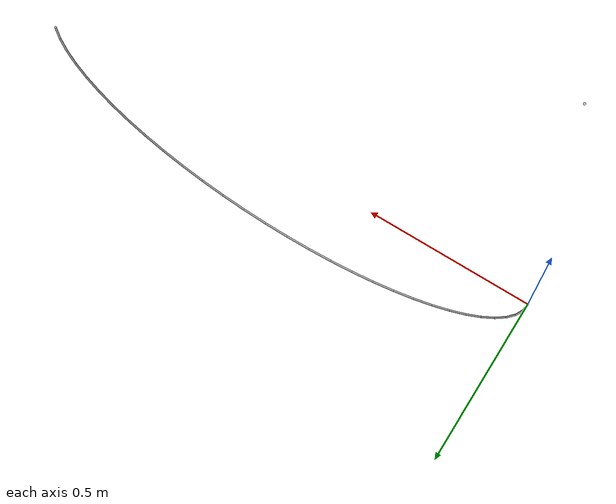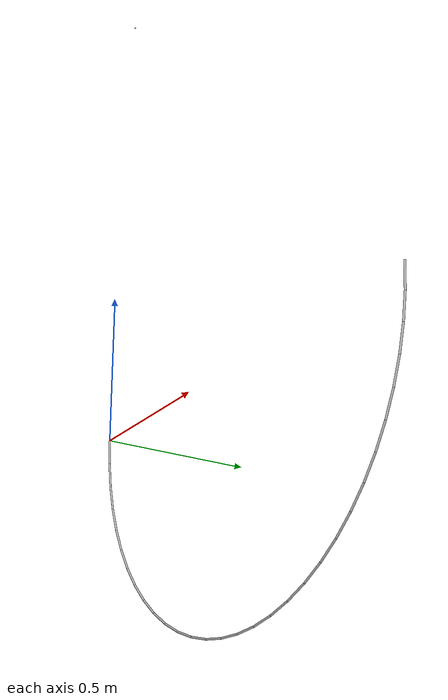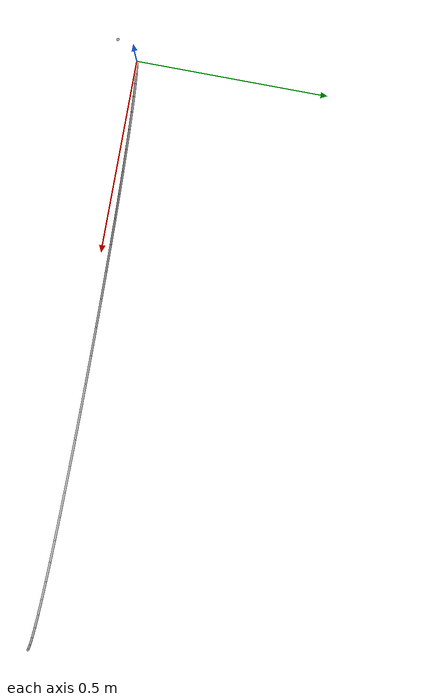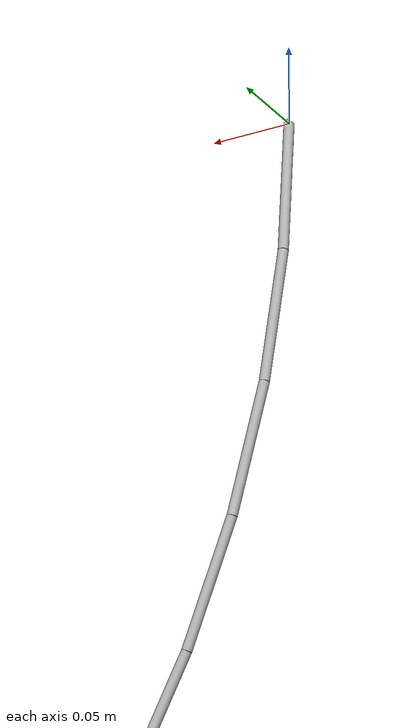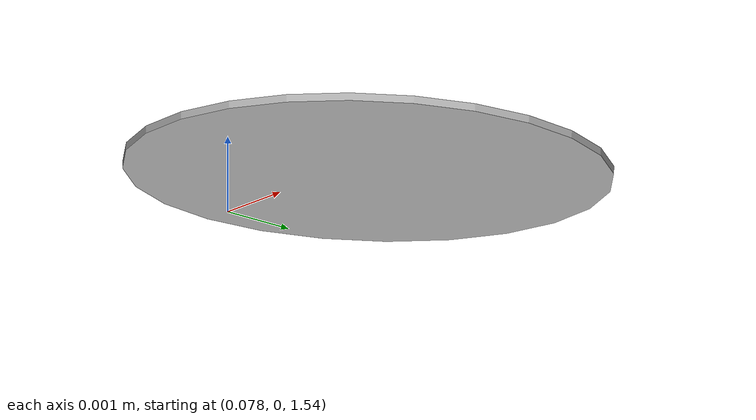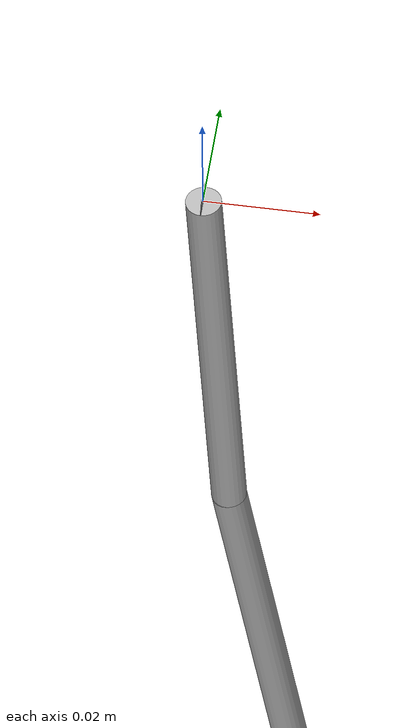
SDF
<sdf version='1.10'>
  <model name='tether_2m'>
    <link name='element_first'>
      <inertial>
        <pose>5.0000000000000002e-05 0 0 0 1.5707963267948966 0</pose>
        <mass>0.0001</mass>
        <inertia>
          <ixx>2.4033333333333338e-10</ixx>
          <ixy>0</ixy>
          <ixz>0</ixz>
          <iyy>2.4033333333333338e-10</iyy>
          <iyz>0</iyz>
          <izz>4.8050000000000005e-10</izz>
        </inertia>
      </inertial>
      <visual name='element_first_visual'>
        <pose>5.0000000000000002e-05 0 0 0 1.5707963267948966 0</pose>
        <geometry>
          <cylinder>
            <length>0.0001</length>
            <radius>0.0030999999999999999</radius>
          </cylinder>
        </geometry>
      </visual>
    </link>
    <joint name='joint_0_to_1' type='universal'>
      <pose relative_to='element_first'>0.0001 0 0 0 1.5184364492350702 0</pose>
      <parent>element_first</parent>
      <child>element_1</child>
      <axis>
        <xyz>0 1 0</xyz>
        <limit>
          <lower>-inf</lower>
          <upper>inf</upper>
        </limit>
        <dynamics>
          <damping>0.01</damping>
          <friction>0</friction>
          <spring_reference>0</spring_reference>
          <spring_stiffness>0</spring_stiffness>
        </dynamics>
    </axis>
      <axis2>
        <xyz>0 0 1</xyz>
        <limit>
          <lower>-inf</lower>
          <upper>inf</upper>
        </limit>
        <dynamics>
          <damping>0.01</damping>
          <friction>0</friction>
          <spring_reference>0</spring_reference>
          <spring_stiffness>0</spring_stiffness>
        </dynamics>
      </axis2>
    </joint>
    <link name='element_1'>
      <pose relative_to='joint_0_to_1'>0 0 0 0 0 0</pose>
      <inertial>
        <pose>0.040349999999999997 0 0 0 1.5707963267948966 0</pose>
        <mass>0.00066666666666666664</mass>
        <inertia>
          <ixx>3.6340666666666662e-07</ixx>
          <ixy>0</ixy>
          <ixz>0</ixz>
          <iyy>3.6340666666666662e-07</iyy>
          <iyz>0</iyz>
          <izz>3.2033333333333328e-09</izz>
        </inertia>
      </inertial>
      <visual name='element_1_visual'>
        <pose>0.040349999999999997 0 0 0 1.5707963267948966 0</pose>
        <geometry>
          <cylinder>
            <length>0.080699999999999994</length>
            <radius>0.0030999999999999999</radius>
          </cylinder>
        </geometry>
      </visual>
    </link>
    <joint name='joint_1_to_2' type='universal'>
      <pose relative_to='element_1'>0.080699999999999994 0 0 0 -0.10471975511965982 0</pose>
      <parent>element_1</parent>
      <child>element_2</child>
      <axis>
        <xyz>0 1 0</xyz>
        <limit>
          <lower>-inf</lower>
          <upper>inf</upper>
        </limit>
        <dynamics>
          <damping>0.01</damping>
          <friction>0</friction>
          <spring_reference>0</spring_reference>
          <spring_stiffness>0</spring_stiffness>
        </dynamics>
    </axis>
      <axis2>
        <xyz>0 0 1</xyz>
        <limit>
          <lower>-inf</lower>
          <upper>inf</upper>
        </limit>
        <dynamics>
          <damping>0.01</damping>
          <friction>0</friction>
          <spring_reference>0</spring_reference>
          <spring_stiffness>0</spring_stiffness>
        </dynamics>
      </axis2>
    </joint>
    <link name='element_2'>
      <pose relative_to='joint_1_to_2'>0 0 0 0 0 0</pose>
      <inertial>
        <pose>0.040349999999999997 0 0 0 1.5707963267948966 0</pose>
        <mass>0.00066666666666666664</mass>
        <inertia>
          <ixx>3.6340666666666662e-07</ixx>
          <ixy>0</ixy>
          <ixz>0</ixz>
          <iyy>3.6340666666666662e-07</iyy>
          <iyz>0</iyz>
          <izz>3.2033333333333328e-09</izz>
        </inertia>
      </inertial>
      <visual name='element_2_visual'>
        <pose>0.040349999999999997 0 0 0 1.5707963267948966 0</pose>
        <geometry>
          <cylinder>
            <length>0.080699999999999994</length>
            <radius>0.0030999999999999999</radius>
          </cylinder>
        </geometry>
      </visual>
    </link>
    <joint name='joint_2_to_3' type='universal'>
      <pose relative_to='element_2'>0.080699999999999994 0 0 0 -0.10471975511965982 0</pose>
      <parent>element_2</parent>
      <child>element_3</child>
      <axis>
        <xyz>0 1 0</xyz>
        <limit>
          <lower>-inf</lower>
          <upper>inf</upper>
        </limit>
        <dynamics>
          <damping>0.01</damping>
          <friction>0</friction>
          <spring_reference>0</spring_reference>
          <spring_stiffness>0</spring_stiffness>
        </dynamics>
    </axis>
      <axis2>
        <xyz>0 0 1</xyz>
        <limit>
          <lower>-inf</lower>
          <upper>inf</upper>
        </limit>
        <dynamics>
          <damping>0.01</damping>
          <friction>0</friction>
          <spring_reference>0</spring_reference>
          <spring_stiffness>0</spring_stiffness>
        </dynamics>
      </axis2>
    </joint>
    <link name='element_3'>
      <pose relative_to='joint_2_to_3'>0 0 0 0 0 0</pose>
      <inertial>
        <pose>0.040349999999999997 0 0 0 1.5707963267948966 0</pose>
        <mass>0.00066666666666666664</mass>
        <inertia>
          <ixx>3.6340666666666662e-07</ixx>
          <ixy>0</ixy>
          <ixz>0</ixz>
          <iyy>3.6340666666666662e-07</iyy>
          <iyz>0</iyz>
          <izz>3.2033333333333328e-09</izz>
        </inertia>
      </inertial>
      <visual name='element_3_visual'>
        <pose>0.040349999999999997 0 0 0 1.5707963267948966 0</pose>
        <geometry>
          <cylinder>
            <length>0.080699999999999994</length>
            <radius>0.0030999999999999999</radius>
          </cylinder>
        </geometry>
      </visual>
    </link>
    <joint name='joint_3_to_4' type='universal'>
      <pose relative_to='element_3'>0.080699999999999994 0 0 0 -0.10471975511965982 0</pose>
      <parent>element_3</parent>
      <child>element_4</child>
      <axis>
        <xyz>0 1 0</xyz>
        <limit>
          <lower>-inf</lower>
          <upper>inf</upper>
        </limit>
        <dynamics>
          <damping>0.01</damping>
          <friction>0</friction>
          <spring_reference>0</spring_reference>
          <spring_stiffness>0</spring_stiffness>
        </dynamics>
    </axis>
      <axis2>
        <xyz>0 0 1</xyz>
        <limit>
          <lower>-inf</lower>
          <upper>inf</upper>
        </limit>
        <dynamics>
          <damping>0.01</damping>
          <friction>0</friction>
          <spring_reference>0</spring_reference>
          <spring_stiffness>0</spring_stiffness>
        </dynamics>
      </axis2>
    </joint>
    <link name='element_4'>
      <pose relative_to='joint_3_to_4'>0 0 0 0 0 0</pose>
      <inertial>
        <pose>0.040349999999999997 0 0 0 1.5707963267948966 0</pose>
        <mass>0.00066666666666666664</mass>
        <inertia>
          <ixx>3.6340666666666662e-07</ixx>
          <ixy>0</ixy>
          <ixz>0</ixz>
          <iyy>3.6340666666666662e-07</iyy>
          <iyz>0</iyz>
          <izz>3.2033333333333328e-09</izz>
        </inertia>
      </inertial>
      <visual name='element_4_visual'>
        <pose>0.040349999999999997 0 0 0 1.5707963267948966 0</pose>
        <geometry>
          <cylinder>
            <length>0.080699999999999994</length>
            <radius>0.0030999999999999999</radius>
          </cylinder>
        </geometry>
      </visual>
    </link>
    <joint name='joint_4_to_5' type='universal'>
      <pose relative_to='element_4'>0.080699999999999994 0 0 0 -0.10471975511965982 0</pose>
      <parent>element_4</parent>
      <child>element_5</child>
      <axis>
        <xyz>0 1 0</xyz>
        <limit>
          <lower>-inf</lower>
          <upper>inf</upper>
        </limit>
        <dynamics>
          <damping>0.01</damping>
          <friction>0</friction>
          <spring_reference>0</spring_reference>
          <spring_stiffness>0</spring_stiffness>
        </dynamics>
    </axis>
      <axis2>
        <xyz>0 0 1</xyz>
        <limit>
          <lower>-inf</lower>
          <upper>inf</upper>
        </limit>
        <dynamics>
          <damping>0.01</damping>
          <friction>0</friction>
          <spring_reference>0</spring_reference>
          <spring_stiffness>0</spring_stiffness>
        </dynamics>
      </axis2>
    </joint>
    <link name='element_5'>
      <pose relative_to='joint_4_to_5'>0 0 0 0 0 0</pose>
      <inertial>
        <pose>0.040349999999999997 0 0 0 1.5707963267948966 0</pose>
        <mass>0.00066666666666666664</mass>
        <inertia>
          <ixx>3.6340666666666662e-07</ixx>
          <ixy>0</ixy>
          <ixz>0</ixz>
          <iyy>3.6340666666666662e-07</iyy>
          <iyz>0</iyz>
          <izz>3.2033333333333328e-09</izz>
        </inertia>
      </inertial>
      <visual name='element_5_visual'>
        <pose>0.040349999999999997 0 0 0 1.5707963267948966 0</pose>
        <geometry>
          <cylinder>
            <length>0.080699999999999994</length>
            <radius>0.0030999999999999999</radius>
          </cylinder>
        </geometry>
      </visual>
    </link>
    <joint name='joint_5_to_6' type='universal'>
      <pose relative_to='element_5'>0.080699999999999994 0 0 0 -0.10471975511965982 0</pose>
      <parent>element_5</parent>
      <child>element_6</child>
      <axis>
        <xyz>0 1 0</xyz>
        <limit>
          <lower>-inf</lower>
          <upper>inf</upper>
        </limit>
        <dynamics>
          <damping>0.01</damping>
          <friction>0</friction>
          <spring_reference>0</spring_reference>
          <spring_stiffness>0</spring_stiffness>
        </dynamics>
    </axis>
      <axis2>
        <xyz>0 0 1</xyz>
        <limit>
          <lower>-inf</lower>
          <upper>inf</upper>
        </limit>
        <dynamics>
          <damping>0.01</damping>
          <friction>0</friction>
          <spring_reference>0</spring_reference>
          <spring_stiffness>0</spring_stiffness>
        </dynamics>
      </axis2>
    </joint>
    <link name='element_6'>
      <pose relative_to='joint_5_to_6'>0 0 0 0 0 0</pose>
      <inertial>
        <pose>0.040349999999999997 0 0 0 1.5707963267948966 0</pose>
        <mass>0.00066666666666666664</mass>
        <inertia>
          <ixx>3.6340666666666662e-07</ixx>
          <ixy>0</ixy>
          <ixz>0</ixz>
          <iyy>3.6340666666666662e-07</iyy>
          <iyz>0</iyz>
          <izz>3.2033333333333328e-09</izz>
        </inertia>
      </inertial>
      <visual name='element_6_visual'>
        <pose>0.040349999999999997 0 0 0 1.5707963267948966 0</pose>
        <geometry>
          <cylinder>
            <length>0.080699999999999994</length>
            <radius>0.0030999999999999999</radius>
          </cylinder>
        </geometry>
      </visual>
    </link>
    <joint name='joint_6_to_7' type='universal'>
      <pose relative_to='element_6'>0.080699999999999994 0 0 0 -0.10471975511965982 0</pose>
      <parent>element_6</parent>
      <child>element_7</child>
      <axis>
        <xyz>0 1 0</xyz>
        <limit>
          <lower>-inf</lower>
          <upper>inf</upper>
        </limit>
        <dynamics>
          <damping>0.01</damping>
          <friction>0</friction>
          <spring_reference>0</spring_reference>
          <spring_stiffness>0</spring_stiffness>
        </dynamics>
    </axis>
      <axis2>
        <xyz>0 0 1</xyz>
        <limit>
          <lower>-inf</lower>
          <upper>inf</upper>
        </limit>
        <dynamics>
          <damping>0.01</damping>
          <friction>0</friction>
          <spring_reference>0</spring_reference>
          <spring_stiffness>0</spring_stiffness>
        </dynamics>
      </axis2>
    </joint>
    <link name='element_7'>
      <pose relative_to='joint_6_to_7'>0 0 0 0 0 0</pose>
      <inertial>
        <pose>0.040349999999999997 0 0 0 1.5707963267948966 0</pose>
        <mass>0.00066666666666666664</mass>
        <inertia>
          <ixx>3.6340666666666662e-07</ixx>
          <ixy>0</ixy>
          <ixz>0</ixz>
          <iyy>3.6340666666666662e-07</iyy>
          <iyz>0</iyz>
          <izz>3.2033333333333328e-09</izz>
        </inertia>
      </inertial>
      <visual name='element_7_visual'>
        <pose>0.040349999999999997 0 0 0 1.5707963267948966 0</pose>
        <geometry>
          <cylinder>
            <length>0.080699999999999994</length>
            <radius>0.0030999999999999999</radius>
          </cylinder>
        </geometry>
      </visual>
    </link>
    <joint name='joint_7_to_8' type='universal'>
      <pose relative_to='element_7'>0.080699999999999994 0 0 0 -0.10471975511965982 0</pose>
      <parent>element_7</parent>
      <child>element_8</child>
      <axis>
        <xyz>0 1 0</xyz>
        <limit>
          <lower>-inf</lower>
          <upper>inf</upper>
        </limit>
        <dynamics>
          <damping>0.01</damping>
          <friction>0</friction>
          <spring_reference>0</spring_reference>
          <spring_stiffness>0</spring_stiffness>
        </dynamics>
    </axis>
      <axis2>
        <xyz>0 0 1</xyz>
        <limit>
          <lower>-inf</lower>
          <upper>inf</upper>
        </limit>
        <dynamics>
          <damping>0.01</damping>
          <friction>0</friction>
          <spring_reference>0</spring_reference>
          <spring_stiffness>0</spring_stiffness>
        </dynamics>
      </axis2>
    </joint>
    <link name='element_8'>
      <pose relative_to='joint_7_to_8'>0 0 0 0 0 0</pose>
      <inertial>
        <pose>0.040349999999999997 0 0 0 1.5707963267948966 0</pose>
        <mass>0.00066666666666666664</mass>
        <inertia>
          <ixx>3.6340666666666662e-07</ixx>
          <ixy>0</ixy>
          <ixz>0</ixz>
          <iyy>3.6340666666666662e-07</iyy>
          <iyz>0</iyz>
          <izz>3.2033333333333328e-09</izz>
        </inertia>
      </inertial>
      <visual name='element_8_visual'>
        <pose>0.040349999999999997 0 0 0 1.5707963267948966 0</pose>
        <geometry>
          <cylinder>
            <length>0.080699999999999994</length>
            <radius>0.0030999999999999999</radius>
          </cylinder>
        </geometry>
      </visual>
    </link>
    <joint name='joint_8_to_9' type='universal'>
      <pose relative_to='element_8'>0.080699999999999994 0 0 0 -0.10471975511965982 0</pose>
      <parent>element_8</parent>
      <child>element_9</child>
      <axis>
        <xyz>0 1 0</xyz>
        <limit>
          <lower>-inf</lower>
          <upper>inf</upper>
        </limit>
        <dynamics>
          <damping>0.01</damping>
          <friction>0</friction>
          <spring_reference>0</spring_reference>
          <spring_stiffness>0</spring_stiffness>
        </dynamics>
    </axis>
      <axis2>
        <xyz>0 0 1</xyz>
        <limit>
          <lower>-inf</lower>
          <upper>inf</upper>
        </limit>
        <dynamics>
          <damping>0.01</damping>
          <friction>0</friction>
          <spring_reference>0</spring_reference>
          <spring_stiffness>0</spring_stiffness>
        </dynamics>
      </axis2>
    </joint>
    <link name='element_9'>
      <pose relative_to='joint_8_to_9'>0 0 0 0 0 0</pose>
      <inertial>
        <pose>0.040349999999999997 0 0 0 1.5707963267948966 0</pose>
        <mass>0.00066666666666666664</mass>
        <inertia>
          <ixx>3.6340666666666662e-07</ixx>
          <ixy>0</ixy>
          <ixz>0</ixz>
          <iyy>3.6340666666666662e-07</iyy>
          <iyz>0</iyz>
          <izz>3.2033333333333328e-09</izz>
        </inertia>
      </inertial>
      <visual name='element_9_visual'>
        <pose>0.040349999999999997 0 0 0 1.5707963267948966 0</pose>
        <geometry>
          <cylinder>
            <length>0.080699999999999994</length>
            <radius>0.0030999999999999999</radius>
          </cylinder>
        </geometry>
      </visual>
    </link>
    <joint name='joint_9_to_10' type='universal'>
      <pose relative_to='element_9'>0.080699999999999994 0 0 0 -0.10471975511965982 0</pose>
      <parent>element_9</parent>
      <child>element_10</child>
      <axis>
        <xyz>0 1 0</xyz>
        <limit>
          <lower>-inf</lower>
          <upper>inf</upper>
        </limit>
        <dynamics>
          <damping>0.01</damping>
          <friction>0</friction>
          <spring_reference>0</spring_reference>
          <spring_stiffness>0</spring_stiffness>
        </dynamics>
    </axis>
      <axis2>
        <xyz>0 0 1</xyz>
        <limit>
          <lower>-inf</lower>
          <upper>inf</upper>
        </limit>
        <dynamics>
          <damping>0.01</damping>
          <friction>0</friction>
          <spring_reference>0</spring_reference>
          <spring_stiffness>0</spring_stiffness>
        </dynamics>
      </axis2>
    </joint>
    <link name='element_10'>
      <pose relative_to='joint_9_to_10'>0 0 0 0 0 0</pose>
      <inertial>
        <pose>0.040349999999999997 0 0 0 1.5707963267948966 0</pose>
        <mass>0.00066666666666666664</mass>
        <inertia>
          <ixx>3.6340666666666662e-07</ixx>
          <ixy>0</ixy>
          <ixz>0</ixz>
          <iyy>3.6340666666666662e-07</iyy>
          <iyz>0</iyz>
          <izz>3.2033333333333328e-09</izz>
        </inertia>
      </inertial>
      <visual name='element_10_visual'>
        <pose>0.040349999999999997 0 0 0 1.5707963267948966 0</pose>
        <geometry>
          <cylinder>
            <length>0.080699999999999994</length>
            <radius>0.0030999999999999999</radius>
          </cylinder>
        </geometry>
      </visual>
    </link>
    <joint name='joint_10_to_11' type='universal'>
      <pose relative_to='element_10'>0.080699999999999994 0 0 0 -0.10471975511965982 0</pose>
      <parent>element_10</parent>
      <child>element_11</child>
      <axis>
        <xyz>0 1 0</xyz>
        <limit>
          <lower>-inf</lower>
          <upper>inf</upper>
        </limit>
        <dynamics>
          <damping>0.01</damping>
          <friction>0</friction>
          <spring_reference>0</spring_reference>
          <spring_stiffness>0</spring_stiffness>
        </dynamics>
    </axis>
      <axis2>
        <xyz>0 0 1</xyz>
        <limit>
          <lower>-inf</lower>
          <upper>inf</upper>
        </limit>
        <dynamics>
          <damping>0.01</damping>
          <friction>0</friction>
          <spring_reference>0</spring_reference>
          <spring_stiffness>0</spring_stiffness>
        </dynamics>
      </axis2>
    </joint>
    <link name='element_11'>
      <pose relative_to='joint_10_to_11'>0 0 0 0 0 0</pose>
      <inertial>
        <pose>0.040349999999999997 0 0 0 1.5707963267948966 0</pose>
        <mass>0.00066666666666666664</mass>
        <inertia>
          <ixx>3.6340666666666662e-07</ixx>
          <ixy>0</ixy>
          <ixz>0</ixz>
          <iyy>3.6340666666666662e-07</iyy>
          <iyz>0</iyz>
          <izz>3.2033333333333328e-09</izz>
        </inertia>
      </inertial>
      <visual name='element_11_visual'>
        <pose>0.040349999999999997 0 0 0 1.5707963267948966 0</pose>
        <geometry>
          <cylinder>
            <length>0.080699999999999994</length>
            <radius>0.0030999999999999999</radius>
          </cylinder>
        </geometry>
      </visual>
    </link>
    <joint name='joint_11_to_12' type='universal'>
      <pose relative_to='element_11'>0.080699999999999994 0 0 0 -0.10471975511965982 0</pose>
      <parent>element_11</parent>
      <child>element_12</child>
      <axis>
        <xyz>0 1 0</xyz>
        <limit>
          <lower>-inf</lower>
          <upper>inf</upper>
        </limit>
        <dynamics>
          <damping>0.01</damping>
          <friction>0</friction>
          <spring_reference>0</spring_reference>
          <spring_stiffness>0</spring_stiffness>
        </dynamics>
    </axis>
      <axis2>
        <xyz>0 0 1</xyz>
        <limit>
          <lower>-inf</lower>
          <upper>inf</upper>
        </limit>
        <dynamics>
          <damping>0.01</damping>
          <friction>0</friction>
          <spring_reference>0</spring_reference>
          <spring_stiffness>0</spring_stiffness>
        </dynamics>
      </axis2>
    </joint>
    <link name='element_12'>
      <pose relative_to='joint_11_to_12'>0 0 0 0 0 0</pose>
      <inertial>
        <pose>0.040349999999999997 0 0 0 1.5707963267948966 0</pose>
        <mass>0.00066666666666666664</mass>
        <inertia>
          <ixx>3.6340666666666662e-07</ixx>
          <ixy>0</ixy>
          <ixz>0</ixz>
          <iyy>3.6340666666666662e-07</iyy>
          <iyz>0</iyz>
          <izz>3.2033333333333328e-09</izz>
        </inertia>
      </inertial>
      <visual name='element_12_visual'>
        <pose>0.040349999999999997 0 0 0 1.5707963267948966 0</pose>
        <geometry>
          <cylinder>
            <length>0.080699999999999994</length>
            <radius>0.0030999999999999999</radius>
          </cylinder>
        </geometry>
      </visual>
    </link>
    <joint name='joint_12_to_13' type='universal'>
      <pose relative_to='element_12'>0.080699999999999994 0 0 0 -0.10471975511965982 0</pose>
      <parent>element_12</parent>
      <child>element_13</child>
      <axis>
        <xyz>0 1 0</xyz>
        <limit>
          <lower>-inf</lower>
          <upper>inf</upper>
        </limit>
        <dynamics>
          <damping>0.01</damping>
          <friction>0</friction>
          <spring_reference>0</spring_reference>
          <spring_stiffness>0</spring_stiffness>
        </dynamics>
    </axis>
      <axis2>
        <xyz>0 0 1</xyz>
        <limit>
          <lower>-inf</lower>
          <upper>inf</upper>
        </limit>
        <dynamics>
          <damping>0.01</damping>
          <friction>0</friction>
          <spring_reference>0</spring_reference>
          <spring_stiffness>0</spring_stiffness>
        </dynamics>
      </axis2>
    </joint>
    <link name='element_13'>
      <pose relative_to='joint_12_to_13'>0 0 0 0 0 0</pose>
      <inertial>
        <pose>0.040349999999999997 0 0 0 1.5707963267948966 0</pose>
        <mass>0.00066666666666666664</mass>
        <inertia>
          <ixx>3.6340666666666662e-07</ixx>
          <ixy>0</ixy>
          <ixz>0</ixz>
          <iyy>3.6340666666666662e-07</iyy>
          <iyz>0</iyz>
          <izz>3.2033333333333328e-09</izz>
        </inertia>
      </inertial>
      <visual name='element_13_visual'>
        <pose>0.040349999999999997 0 0 0 1.5707963267948966 0</pose>
        <geometry>
          <cylinder>
            <length>0.080699999999999994</length>
            <radius>0.0030999999999999999</radius>
          </cylinder>
        </geometry>
      </visual>
    </link>
    <joint name='joint_13_to_14' type='universal'>
      <pose relative_to='element_13'>0.080699999999999994 0 0 0 -0.10471975511965982 0</pose>
      <parent>element_13</parent>
      <child>element_14</child>
      <axis>
        <xyz>0 1 0</xyz>
        <limit>
          <lower>-inf</lower>
          <upper>inf</upper>
        </limit>
        <dynamics>
          <damping>0.01</damping>
          <friction>0</friction>
          <spring_reference>0</spring_reference>
          <spring_stiffness>0</spring_stiffness>
        </dynamics>
    </axis>
      <axis2>
        <xyz>0 0 1</xyz>
        <limit>
          <lower>-inf</lower>
          <upper>inf</upper>
        </limit>
        <dynamics>
          <damping>0.01</damping>
          <friction>0</friction>
          <spring_reference>0</spring_reference>
          <spring_stiffness>0</spring_stiffness>
        </dynamics>
      </axis2>
    </joint>
    <link name='element_14'>
      <pose relative_to='joint_13_to_14'>0 0 0 0 0 0</pose>
      <inertial>
        <pose>0.040349999999999997 0 0 0 1.5707963267948966 0</pose>
        <mass>0.00066666666666666664</mass>
        <inertia>
          <ixx>3.6340666666666662e-07</ixx>
          <ixy>0</ixy>
          <ixz>0</ixz>
          <iyy>3.6340666666666662e-07</iyy>
          <iyz>0</iyz>
          <izz>3.2033333333333328e-09</izz>
        </inertia>
      </inertial>
      <visual name='element_14_visual'>
        <pose>0.040349999999999997 0 0 0 1.5707963267948966 0</pose>
        <geometry>
          <cylinder>
            <length>0.080699999999999994</length>
            <radius>0.0030999999999999999</radius>
          </cylinder>
        </geometry>
      </visual>
    </link>
    <joint name='joint_14_to_15' type='universal'>
      <pose relative_to='element_14'>0.080699999999999994 0 0 0 -0.10471975511965982 0</pose>
      <parent>element_14</parent>
      <child>element_15</child>
      <axis>
        <xyz>0 1 0</xyz>
        <limit>
          <lower>-inf</lower>
          <upper>inf</upper>
        </limit>
        <dynamics>
          <damping>0.01</damping>
          <friction>0</friction>
          <spring_reference>0</spring_reference>
          <spring_stiffness>0</spring_stiffness>
        </dynamics>
    </axis>
      <axis2>
        <xyz>0 0 1</xyz>
        <limit>
          <lower>-inf</lower>
          <upper>inf</upper>
        </limit>
        <dynamics>
          <damping>0.01</damping>
          <friction>0</friction>
          <spring_reference>0</spring_reference>
          <spring_stiffness>0</spring_stiffness>
        </dynamics>
      </axis2>
    </joint>
    <link name='element_15'>
      <pose relative_to='joint_14_to_15'>0 0 0 0 0 0</pose>
      <inertial>
        <pose>0.040349999999999997 0 0 0 1.5707963267948966 0</pose>
        <mass>0.00066666666666666664</mass>
        <inertia>
          <ixx>3.6340666666666662e-07</ixx>
          <ixy>0</ixy>
          <ixz>0</ixz>
          <iyy>3.6340666666666662e-07</iyy>
          <iyz>0</iyz>
          <izz>3.2033333333333328e-09</izz>
        </inertia>
      </inertial>
      <visual name='element_15_visual'>
        <pose>0.040349999999999997 0 0 0 1.5707963267948966 0</pose>
        <geometry>
          <cylinder>
            <length>0.080699999999999994</length>
            <radius>0.0030999999999999999</radius>
          </cylinder>
        </geometry>
      </visual>
    </link>
    <joint name='joint_15_to_16' type='universal'>
      <pose relative_to='element_15'>0.080699999999999994 0 0 0 -0.10471975511965982 0</pose>
      <parent>element_15</parent>
      <child>element_16</child>
      <axis>
        <xyz>0 1 0</xyz>
        <limit>
          <lower>-inf</lower>
          <upper>inf</upper>
        </limit>
        <dynamics>
          <damping>0.01</damping>
          <friction>0</friction>
          <spring_reference>0</spring_reference>
          <spring_stiffness>0</spring_stiffness>
        </dynamics>
    </axis>
      <axis2>
        <xyz>0 0 1</xyz>
        <limit>
          <lower>-inf</lower>
          <upper>inf</upper>
        </limit>
        <dynamics>
          <damping>0.01</damping>
          <friction>0</friction>
          <spring_reference>0</spring_reference>
          <spring_stiffness>0</spring_stiffness>
        </dynamics>
      </axis2>
    </joint>
    <link name='element_16'>
      <pose relative_to='joint_15_to_16'>0 0 0 0 0 0</pose>
      <inertial>
        <pose>0.040349999999999997 0 0 0 1.5707963267948966 0</pose>
        <mass>0.00066666666666666664</mass>
        <inertia>
          <ixx>3.6340666666666662e-07</ixx>
          <ixy>0</ixy>
          <ixz>0</ixz>
          <iyy>3.6340666666666662e-07</iyy>
          <iyz>0</iyz>
          <izz>3.2033333333333328e-09</izz>
        </inertia>
      </inertial>
      <visual name='element_16_visual'>
        <pose>0.040349999999999997 0 0 0 1.5707963267948966 0</pose>
        <geometry>
          <cylinder>
            <length>0.080699999999999994</length>
            <radius>0.0030999999999999999</radius>
          </cylinder>
        </geometry>
      </visual>
    </link>
    <joint name='joint_16_to_17' type='universal'>
      <pose relative_to='element_16'>0.080699999999999994 0 0 0 -0.10471975511965982 0</pose>
      <parent>element_16</parent>
      <child>element_17</child>
      <axis>
        <xyz>0 1 0</xyz>
        <limit>
          <lower>-inf</lower>
          <upper>inf</upper>
        </limit>
        <dynamics>
          <damping>0.01</damping>
          <friction>0</friction>
          <spring_reference>0</spring_reference>
          <spring_stiffness>0</spring_stiffness>
        </dynamics>
    </axis>
      <axis2>
        <xyz>0 0 1</xyz>
        <limit>
          <lower>-inf</lower>
          <upper>inf</upper>
        </limit>
        <dynamics>
          <damping>0.01</damping>
          <friction>0</friction>
          <spring_reference>0</spring_reference>
          <spring_stiffness>0</spring_stiffness>
        </dynamics>
      </axis2>
    </joint>
    <link name='element_17'>
      <pose relative_to='joint_16_to_17'>0 0 0 0 0 0</pose>
      <inertial>
        <pose>0.040349999999999997 0 0 0 1.5707963267948966 0</pose>
        <mass>0.00066666666666666664</mass>
        <inertia>
          <ixx>3.6340666666666662e-07</ixx>
          <ixy>0</ixy>
          <ixz>0</ixz>
          <iyy>3.6340666666666662e-07</iyy>
          <iyz>0</iyz>
          <izz>3.2033333333333328e-09</izz>
        </inertia>
      </inertial>
      <visual name='element_17_visual'>
        <pose>0.040349999999999997 0 0 0 1.5707963267948966 0</pose>
        <geometry>
          <cylinder>
            <length>0.080699999999999994</length>
            <radius>0.0030999999999999999</radius>
          </cylinder>
        </geometry>
      </visual>
    </link>
    <joint name='joint_17_to_18' type='universal'>
      <pose relative_to='element_17'>0.080699999999999994 0 0 0 -0.10471975511965982 0</pose>
      <parent>element_17</parent>
      <child>element_18</child>
      <axis>
        <xyz>0 1 0</xyz>
        <limit>
          <lower>-inf</lower>
          <upper>inf</upper>
        </limit>
        <dynamics>
          <damping>0.01</damping>
          <friction>0</friction>
          <spring_reference>0</spring_reference>
          <spring_stiffness>0</spring_stiffness>
        </dynamics>
    </axis>
      <axis2>
        <xyz>0 0 1</xyz>
        <limit>
          <lower>-inf</lower>
          <upper>inf</upper>
        </limit>
        <dynamics>
          <damping>0.01</damping>
          <friction>0</friction>
          <spring_reference>0</spring_reference>
          <spring_stiffness>0</spring_stiffness>
        </dynamics>
      </axis2>
    </joint>
    <link name='element_18'>
      <pose relative_to='joint_17_to_18'>0 0 0 0 0 0</pose>
      <inertial>
        <pose>0.040349999999999997 0 0 0 1.5707963267948966 0</pose>
        <mass>0.00066666666666666664</mass>
        <inertia>
          <ixx>3.6340666666666662e-07</ixx>
          <ixy>0</ixy>
          <ixz>0</ixz>
          <iyy>3.6340666666666662e-07</iyy>
          <iyz>0</iyz>
          <izz>3.2033333333333328e-09</izz>
        </inertia>
      </inertial>
      <visual name='element_18_visual'>
        <pose>0.040349999999999997 0 0 0 1.5707963267948966 0</pose>
        <geometry>
          <cylinder>
            <length>0.080699999999999994</length>
            <radius>0.0030999999999999999</radius>
          </cylinder>
        </geometry>
      </visual>
    </link>
    <joint name='joint_18_to_19' type='universal'>
      <pose relative_to='element_18'>0.080699999999999994 0 0 0 -0.10471975511965982 0</pose>
      <parent>element_18</parent>
      <child>element_19</child>
      <axis>
        <xyz>0 1 0</xyz>
        <limit>
          <lower>-inf</lower>
          <upper>inf</upper>
        </limit>
        <dynamics>
          <damping>0.01</damping>
          <friction>0</friction>
          <spring_reference>0</spring_reference>
          <spring_stiffness>0</spring_stiffness>
        </dynamics>
    </axis>
      <axis2>
        <xyz>0 0 1</xyz>
        <limit>
          <lower>-inf</lower>
          <upper>inf</upper>
        </limit>
        <dynamics>
          <damping>0.01</damping>
          <friction>0</friction>
          <spring_reference>0</spring_reference>
          <spring_stiffness>0</spring_stiffness>
        </dynamics>
      </axis2>
    </joint>
    <link name='element_19'>
      <pose relative_to='joint_18_to_19'>0 0 0 0 0 0</pose>
      <inertial>
        <pose>0.040349999999999997 0 0 0 1.5707963267948966 0</pose>
        <mass>0.00066666666666666664</mass>
        <inertia>
          <ixx>3.6340666666666662e-07</ixx>
          <ixy>0</ixy>
          <ixz>0</ixz>
          <iyy>3.6340666666666662e-07</iyy>
          <iyz>0</iyz>
          <izz>3.2033333333333328e-09</izz>
        </inertia>
      </inertial>
      <visual name='element_19_visual'>
        <pose>0.040349999999999997 0 0 0 1.5707963267948966 0</pose>
        <geometry>
          <cylinder>
            <length>0.080699999999999994</length>
            <radius>0.0030999999999999999</radius>
          </cylinder>
        </geometry>
      </visual>
    </link>
    <joint name='joint_19_to_20' type='universal'>
      <pose relative_to='element_19'>0.080699999999999994 0 0 0 -0.10471975511965982 0</pose>
      <parent>element_19</parent>
      <child>element_20</child>
      <axis>
        <xyz>0 1 0</xyz>
        <limit>
          <lower>-inf</lower>
          <upper>inf</upper>
        </limit>
        <dynamics>
          <damping>0.01</damping>
          <friction>0</friction>
          <spring_reference>0</spring_reference>
          <spring_stiffness>0</spring_stiffness>
        </dynamics>
    </axis>
      <axis2>
        <xyz>0 0 1</xyz>
        <limit>
          <lower>-inf</lower>
          <upper>inf</upper>
        </limit>
        <dynamics>
          <damping>0.01</damping>
          <friction>0</friction>
          <spring_reference>0</spring_reference>
          <spring_stiffness>0</spring_stiffness>
        </dynamics>
      </axis2>
    </joint>
    <link name='element_20'>
      <pose relative_to='joint_19_to_20'>0 0 0 0 0 0</pose>
      <inertial>
        <pose>0.040349999999999997 0 0 0 1.5707963267948966 0</pose>
        <mass>0.00066666666666666664</mass>
        <inertia>
          <ixx>3.6340666666666662e-07</ixx>
          <ixy>0</ixy>
          <ixz>0</ixz>
          <iyy>3.6340666666666662e-07</iyy>
          <iyz>0</iyz>
          <izz>3.2033333333333328e-09</izz>
        </inertia>
      </inertial>
      <visual name='element_20_visual'>
        <pose>0.040349999999999997 0 0 0 1.5707963267948966 0</pose>
        <geometry>
          <cylinder>
            <length>0.080699999999999994</length>
            <radius>0.0030999999999999999</radius>
          </cylinder>
        </geometry>
      </visual>
    </link>
    <joint name='joint_20_to_21' type='universal'>
      <pose relative_to='element_20'>0.080699999999999994 0 0 0 -0.10471975511965982 0</pose>
      <parent>element_20</parent>
      <child>element_21</child>
      <axis>
        <xyz>0 1 0</xyz>
        <limit>
          <lower>-inf</lower>
          <upper>inf</upper>
        </limit>
        <dynamics>
          <damping>0.01</damping>
          <friction>0</friction>
          <spring_reference>0</spring_reference>
          <spring_stiffness>0</spring_stiffness>
        </dynamics>
    </axis>
      <axis2>
        <xyz>0 0 1</xyz>
        <limit>
          <lower>-inf</lower>
          <upper>inf</upper>
        </limit>
        <dynamics>
          <damping>0.01</damping>
          <friction>0</friction>
          <spring_reference>0</spring_reference>
          <spring_stiffness>0</spring_stiffness>
        </dynamics>
      </axis2>
    </joint>
    <link name='element_21'>
      <pose relative_to='joint_20_to_21'>0 0 0 0 0 0</pose>
      <inertial>
        <pose>0.040349999999999997 0 0 0 1.5707963267948966 0</pose>
        <mass>0.00066666666666666664</mass>
        <inertia>
          <ixx>3.6340666666666662e-07</ixx>
          <ixy>0</ixy>
          <ixz>0</ixz>
          <iyy>3.6340666666666662e-07</iyy>
          <iyz>0</iyz>
          <izz>3.2033333333333328e-09</izz>
        </inertia>
      </inertial>
      <visual name='element_21_visual'>
        <pose>0.040349999999999997 0 0 0 1.5707963267948966 0</pose>
        <geometry>
          <cylinder>
            <length>0.080699999999999994</length>
            <radius>0.0030999999999999999</radius>
          </cylinder>
        </geometry>
      </visual>
    </link>
    <joint name='joint_21_to_22' type='universal'>
      <pose relative_to='element_21'>0.080699999999999994 0 0 0 -0.10471975511965982 0</pose>
      <parent>element_21</parent>
      <child>element_22</child>
      <axis>
        <xyz>0 1 0</xyz>
        <limit>
          <lower>-inf</lower>
          <upper>inf</upper>
        </limit>
        <dynamics>
          <damping>0.01</damping>
          <friction>0</friction>
          <spring_reference>0</spring_reference>
          <spring_stiffness>0</spring_stiffness>
        </dynamics>
    </axis>
      <axis2>
        <xyz>0 0 1</xyz>
        <limit>
          <lower>-inf</lower>
          <upper>inf</upper>
        </limit>
        <dynamics>
          <damping>0.01</damping>
          <friction>0</friction>
          <spring_reference>0</spring_reference>
          <spring_stiffness>0</spring_stiffness>
        </dynamics>
      </axis2>
    </joint>
    <link name='element_22'>
      <pose relative_to='joint_21_to_22'>0 0 0 0 0 0</pose>
      <inertial>
        <pose>0.040349999999999997 0 0 0 1.5707963267948966 0</pose>
        <mass>0.00066666666666666664</mass>
        <inertia>
          <ixx>3.6340666666666662e-07</ixx>
          <ixy>0</ixy>
          <ixz>0</ixz>
          <iyy>3.6340666666666662e-07</iyy>
          <iyz>0</iyz>
          <izz>3.2033333333333328e-09</izz>
        </inertia>
      </inertial>
      <visual name='element_22_visual'>
        <pose>0.040349999999999997 0 0 0 1.5707963267948966 0</pose>
        <geometry>
          <cylinder>
            <length>0.080699999999999994</length>
            <radius>0.0030999999999999999</radius>
          </cylinder>
        </geometry>
      </visual>
    </link>
    <joint name='joint_22_to_23' type='universal'>
      <pose relative_to='element_22'>0.080699999999999994 0 0 0 -0.10471975511965982 0</pose>
      <parent>element_22</parent>
      <child>element_23</child>
      <axis>
        <xyz>0 1 0</xyz>
        <limit>
          <lower>-inf</lower>
          <upper>inf</upper>
        </limit>
        <dynamics>
          <damping>0.01</damping>
          <friction>0</friction>
          <spring_reference>0</spring_reference>
          <spring_stiffness>0</spring_stiffness>
        </dynamics>
    </axis>
      <axis2>
        <xyz>0 0 1</xyz>
        <limit>
          <lower>-inf</lower>
          <upper>inf</upper>
        </limit>
        <dynamics>
          <damping>0.01</damping>
          <friction>0</friction>
          <spring_reference>0</spring_reference>
          <spring_stiffness>0</spring_stiffness>
        </dynamics>
      </axis2>
    </joint>
    <link name='element_23'>
      <pose relative_to='joint_22_to_23'>0 0 0 0 0 0</pose>
      <inertial>
        <pose>0.040349999999999997 0 0 0 1.5707963267948966 0</pose>
        <mass>0.00066666666666666664</mass>
        <inertia>
          <ixx>3.6340666666666662e-07</ixx>
          <ixy>0</ixy>
          <ixz>0</ixz>
          <iyy>3.6340666666666662e-07</iyy>
          <iyz>0</iyz>
          <izz>3.2033333333333328e-09</izz>
        </inertia>
      </inertial>
      <visual name='element_23_visual'>
        <pose>0.040349999999999997 0 0 0 1.5707963267948966 0</pose>
        <geometry>
          <cylinder>
            <length>0.080699999999999994</length>
            <radius>0.0030999999999999999</radius>
          </cylinder>
        </geometry>
      </visual>
    </link>
    <joint name='joint_23_to_24' type='universal'>
      <pose relative_to='element_23'>0.080699999999999994 0 0 0 -0.10471975511965982 0</pose>
      <parent>element_23</parent>
      <child>element_24</child>
      <axis>
        <xyz>0 1 0</xyz>
        <limit>
          <lower>-inf</lower>
          <upper>inf</upper>
        </limit>
        <dynamics>
          <damping>0.01</damping>
          <friction>0</friction>
          <spring_reference>0</spring_reference>
          <spring_stiffness>0</spring_stiffness>
        </dynamics>
    </axis>
      <axis2>
        <xyz>0 0 1</xyz>
        <limit>
          <lower>-inf</lower>
          <upper>inf</upper>
        </limit>
        <dynamics>
          <damping>0.01</damping>
          <friction>0</friction>
          <spring_reference>0</spring_reference>
          <spring_stiffness>0</spring_stiffness>
        </dynamics>
      </axis2>
    </joint>
    <link name='element_24'>
      <pose relative_to='joint_23_to_24'>0 0 0 0 0 0</pose>
      <inertial>
        <pose>0.040349999999999997 0 0 0 1.5707963267948966 0</pose>
        <mass>0.00066666666666666664</mass>
        <inertia>
          <ixx>3.6340666666666662e-07</ixx>
          <ixy>0</ixy>
          <ixz>0</ixz>
          <iyy>3.6340666666666662e-07</iyy>
          <iyz>0</iyz>
          <izz>3.2033333333333328e-09</izz>
        </inertia>
      </inertial>
      <visual name='element_24_visual'>
        <pose>0.040349999999999997 0 0 0 1.5707963267948966 0</pose>
        <geometry>
          <cylinder>
            <length>0.080699999999999994</length>
            <radius>0.0030999999999999999</radius>
          </cylinder>
        </geometry>
      </visual>
    </link>
    <joint name='joint_24_to_25' type='universal'>
      <pose relative_to='element_24'>0.080699999999999994 0 0 0 -0.10471975511965982 0</pose>
      <parent>element_24</parent>
      <child>element_25</child>
      <axis>
        <xyz>0 1 0</xyz>
        <limit>
          <lower>-inf</lower>
          <upper>inf</upper>
        </limit>
        <dynamics>
          <damping>0.01</damping>
          <friction>0</friction>
          <spring_reference>0</spring_reference>
          <spring_stiffness>0</spring_stiffness>
        </dynamics>
    </axis>
      <axis2>
        <xyz>0 0 1</xyz>
        <limit>
          <lower>-inf</lower>
          <upper>inf</upper>
        </limit>
        <dynamics>
          <damping>0.01</damping>
          <friction>0</friction>
          <spring_reference>0</spring_reference>
          <spring_stiffness>0</spring_stiffness>
        </dynamics>
      </axis2>
    </joint>
    <link name='element_25'>
      <pose relative_to='joint_24_to_25'>0 0 0 0 0 0</pose>
      <inertial>
        <pose>0.040349999999999997 0 0 0 1.5707963267948966 0</pose>
        <mass>0.00066666666666666664</mass>
        <inertia>
          <ixx>3.6340666666666662e-07</ixx>
          <ixy>0</ixy>
          <ixz>0</ixz>
          <iyy>3.6340666666666662e-07</iyy>
          <iyz>0</iyz>
          <izz>3.2033333333333328e-09</izz>
        </inertia>
      </inertial>
      <visual name='element_25_visual'>
        <pose>0.040349999999999997 0 0 0 1.5707963267948966 0</pose>
        <geometry>
          <cylinder>
            <length>0.080699999999999994</length>
            <radius>0.0030999999999999999</radius>
          </cylinder>
        </geometry>
      </visual>
    </link>
    <joint name='joint_25_to_26' type='universal'>
      <pose relative_to='element_25'>0.080699999999999994 0 0 0 -0.10471975511965982 0</pose>
      <parent>element_25</parent>
      <child>element_26</child>
      <axis>
        <xyz>0 1 0</xyz>
        <limit>
          <lower>-inf</lower>
          <upper>inf</upper>
        </limit>
        <dynamics>
          <damping>0.01</damping>
          <friction>0</friction>
          <spring_reference>0</spring_reference>
          <spring_stiffness>0</spring_stiffness>
        </dynamics>
    </axis>
      <axis2>
        <xyz>0 0 1</xyz>
        <limit>
          <lower>-inf</lower>
          <upper>inf</upper>
        </limit>
        <dynamics>
          <damping>0.01</damping>
          <friction>0</friction>
          <spring_reference>0</spring_reference>
          <spring_stiffness>0</spring_stiffness>
        </dynamics>
      </axis2>
    </joint>
    <link name='element_26'>
      <pose relative_to='joint_25_to_26'>0 0 0 0 0 0</pose>
      <inertial>
        <pose>0.040349999999999997 0 0 0 1.5707963267948966 0</pose>
        <mass>0.00066666666666666664</mass>
        <inertia>
          <ixx>3.6340666666666662e-07</ixx>
          <ixy>0</ixy>
          <ixz>0</ixz>
          <iyy>3.6340666666666662e-07</iyy>
          <iyz>0</iyz>
          <izz>3.2033333333333328e-09</izz>
        </inertia>
      </inertial>
      <visual name='element_26_visual'>
        <pose>0.040349999999999997 0 0 0 1.5707963267948966 0</pose>
        <geometry>
          <cylinder>
            <length>0.080699999999999994</length>
            <radius>0.0030999999999999999</radius>
          </cylinder>
        </geometry>
      </visual>
    </link>
    <joint name='joint_26_to_27' type='universal'>
      <pose relative_to='element_26'>0.080699999999999994 0 0 0 -0.10471975511965982 0</pose>
      <parent>element_26</parent>
      <child>element_27</child>
      <axis>
        <xyz>0 1 0</xyz>
        <limit>
          <lower>-inf</lower>
          <upper>inf</upper>
        </limit>
        <dynamics>
          <damping>0.01</damping>
          <friction>0</friction>
          <spring_reference>0</spring_reference>
          <spring_stiffness>0</spring_stiffness>
        </dynamics>
    </axis>
      <axis2>
        <xyz>0 0 1</xyz>
        <limit>
          <lower>-inf</lower>
          <upper>inf</upper>
        </limit>
        <dynamics>
          <damping>0.01</damping>
          <friction>0</friction>
          <spring_reference>0</spring_reference>
          <spring_stiffness>0</spring_stiffness>
        </dynamics>
      </axis2>
    </joint>
    <link name='element_27'>
      <pose relative_to='joint_26_to_27'>0 0 0 0 0 0</pose>
      <inertial>
        <pose>0.040349999999999997 0 0 0 1.5707963267948966 0</pose>
        <mass>0.00066666666666666664</mass>
        <inertia>
          <ixx>3.6340666666666662e-07</ixx>
          <ixy>0</ixy>
          <ixz>0</ixz>
          <iyy>3.6340666666666662e-07</iyy>
          <iyz>0</iyz>
          <izz>3.2033333333333328e-09</izz>
        </inertia>
      </inertial>
      <visual name='element_27_visual'>
        <pose>0.040349999999999997 0 0 0 1.5707963267948966 0</pose>
        <geometry>
          <cylinder>
            <length>0.080699999999999994</length>
            <radius>0.0030999999999999999</radius>
          </cylinder>
        </geometry>
      </visual>
    </link>
    <joint name='joint_27_to_28' type='universal'>
      <pose relative_to='element_27'>0.080699999999999994 0 0 0 -0.10471975511965982 0</pose>
      <parent>element_27</parent>
      <child>element_28</child>
      <axis>
        <xyz>0 1 0</xyz>
        <limit>
          <lower>-inf</lower>
          <upper>inf</upper>
        </limit>
        <dynamics>
          <damping>0.01</damping>
          <friction>0</friction>
          <spring_reference>0</spring_reference>
          <spring_stiffness>0</spring_stiffness>
        </dynamics>
    </axis>
      <axis2>
        <xyz>0 0 1</xyz>
        <limit>
          <lower>-inf</lower>
          <upper>inf</upper>
        </limit>
        <dynamics>
          <damping>0.01</damping>
          <friction>0</friction>
          <spring_reference>0</spring_reference>
          <spring_stiffness>0</spring_stiffness>
        </dynamics>
      </axis2>
    </joint>
    <link name='element_28'>
      <pose relative_to='joint_27_to_28'>0 0 0 0 0 0</pose>
      <inertial>
        <pose>0.040349999999999997 0 0 0 1.5707963267948966 0</pose>
        <mass>0.00066666666666666664</mass>
        <inertia>
          <ixx>3.6340666666666662e-07</ixx>
          <ixy>0</ixy>
          <ixz>0</ixz>
          <iyy>3.6340666666666662e-07</iyy>
          <iyz>0</iyz>
          <izz>3.2033333333333328e-09</izz>
        </inertia>
      </inertial>
      <visual name='element_28_visual'>
        <pose>0.040349999999999997 0 0 0 1.5707963267948966 0</pose>
        <geometry>
          <cylinder>
            <length>0.080699999999999994</length>
            <radius>0.0030999999999999999</radius>
          </cylinder>
        </geometry>
      </visual>
    </link>
    <joint name='joint_28_to_29' type='universal'>
      <pose relative_to='element_28'>0.080699999999999994 0 0 0 -0.10471975511965982 0</pose>
      <parent>element_28</parent>
      <child>element_29</child>
      <axis>
        <xyz>0 1 0</xyz>
        <limit>
          <lower>-inf</lower>
          <upper>inf</upper>
        </limit>
        <dynamics>
          <damping>0.01</damping>
          <friction>0</friction>
          <spring_reference>0</spring_reference>
          <spring_stiffness>0</spring_stiffness>
        </dynamics>
    </axis>
      <axis2>
        <xyz>0 0 1</xyz>
        <limit>
          <lower>-inf</lower>
          <upper>inf</upper>
        </limit>
        <dynamics>
          <damping>0.01</damping>
          <friction>0</friction>
          <spring_reference>0</spring_reference>
          <spring_stiffness>0</spring_stiffness>
        </dynamics>
      </axis2>
    </joint>
    <link name='element_29'>
      <pose relative_to='joint_28_to_29'>0 0 0 0 0 0</pose>
      <inertial>
        <pose>0.040349999999999997 0 0 0 1.5707963267948966 0</pose>
        <mass>0.00066666666666666664</mass>
        <inertia>
          <ixx>3.6340666666666662e-07</ixx>
          <ixy>0</ixy>
          <ixz>0</ixz>
          <iyy>3.6340666666666662e-07</iyy>
          <iyz>0</iyz>
          <izz>3.2033333333333328e-09</izz>
        </inertia>
      </inertial>
      <visual name='element_29_visual'>
        <pose>0.040349999999999997 0 0 0 1.5707963267948966 0</pose>
        <geometry>
          <cylinder>
            <length>0.080699999999999994</length>
            <radius>0.0030999999999999999</radius>
          </cylinder>
        </geometry>
      </visual>
    </link>
    <joint name='joint_29_to_30' type='universal'>
      <pose relative_to='element_29'>0.080699999999999994 0 0 0 -0.10471975511965982 0</pose>
      <parent>element_29</parent>
      <child>element_30</child>
      <axis>
        <xyz>0 1 0</xyz>
        <limit>
          <lower>-inf</lower>
          <upper>inf</upper>
        </limit>
        <dynamics>
          <damping>0.01</damping>
          <friction>0</friction>
          <spring_reference>0</spring_reference>
          <spring_stiffness>0</spring_stiffness>
        </dynamics>
    </axis>
      <axis2>
        <xyz>0 0 1</xyz>
        <limit>
          <lower>-inf</lower>
          <upper>inf</upper>
        </limit>
        <dynamics>
          <damping>0.01</damping>
          <friction>0</friction>
          <spring_reference>0</spring_reference>
          <spring_stiffness>0</spring_stiffness>
        </dynamics>
      </axis2>
    </joint>
    <link name='element_30'>
      <pose relative_to='joint_29_to_30'>0 0 0 0 0 0</pose>
      <inertial>
        <pose>0.040349999999999997 0 0 0 1.5707963267948966 0</pose>
        <mass>0.00066666666666666664</mass>
        <inertia>
          <ixx>3.6340666666666662e-07</ixx>
          <ixy>0</ixy>
          <ixz>0</ixz>
          <iyy>3.6340666666666662e-07</iyy>
          <iyz>0</iyz>
          <izz>3.2033333333333328e-09</izz>
        </inertia>
      </inertial>
      <visual name='element_30_visual'>
        <pose>0.040349999999999997 0 0 0 1.5707963267948966 0</pose>
        <geometry>
          <cylinder>
            <length>0.080699999999999994</length>
            <radius>0.0030999999999999999</radius>
          </cylinder>
        </geometry>
      </visual>
    </link>
    <joint name='joint_30_to_31' type='universal'>
      <pose relative_to='element_30'>0.080699999999999994 0 0 0 1.5184364492350702 0</pose>
      <parent>element_30</parent>
      <child>element_last</child>
      <axis>
        <xyz>0 1 0</xyz>
        <limit>
          <lower>-inf</lower>
          <upper>inf</upper>
        </limit>
        <dynamics>
          <damping>0.01</damping>
          <friction>0</friction>
          <spring_reference>0</spring_reference>
          <spring_stiffness>0</spring_stiffness>
        </dynamics>
    </axis>
      <axis2>
        <xyz>0 0 1</xyz>
        <limit>
          <lower>-inf</lower>
          <upper>inf</upper>
        </limit>
        <dynamics>
          <damping>0.01</damping>
          <friction>0</friction>
          <spring_reference>0</spring_reference>
          <spring_stiffness>0</spring_stiffness>
        </dynamics>
      </axis2>
    </joint>
    <link name='element_last'>
      <pose relative_to='joint_30_to_31'>0 0 0 0 0 0</pose>
      <inertial>
        <pose>5.0000000000000002e-05 0 0 0 1.5707963267948966 0</pose>
        <mass>0.0001</mass>
        <inertia>
          <ixx>2.4033333333333338e-10</ixx>
          <ixy>0</ixy>
          <ixz>0</ixz>
          <iyy>2.4033333333333338e-10</iyy>
          <iyz>0</iyz>
          <izz>4.8050000000000005e-10</izz>
        </inertia>
      </inertial>
      <visual name='element_last_visual'>
        <pose>5.0000000000000002e-05 0 0 0 1.5707963267948966 0</pose>
        <geometry>
          <cylinder>
            <length>0.0001</length>
            <radius>0.0030999999999999999</radius>
          </cylinder>
        </geometry>
      </visual>
    </link>
  </model>
</sdf>
